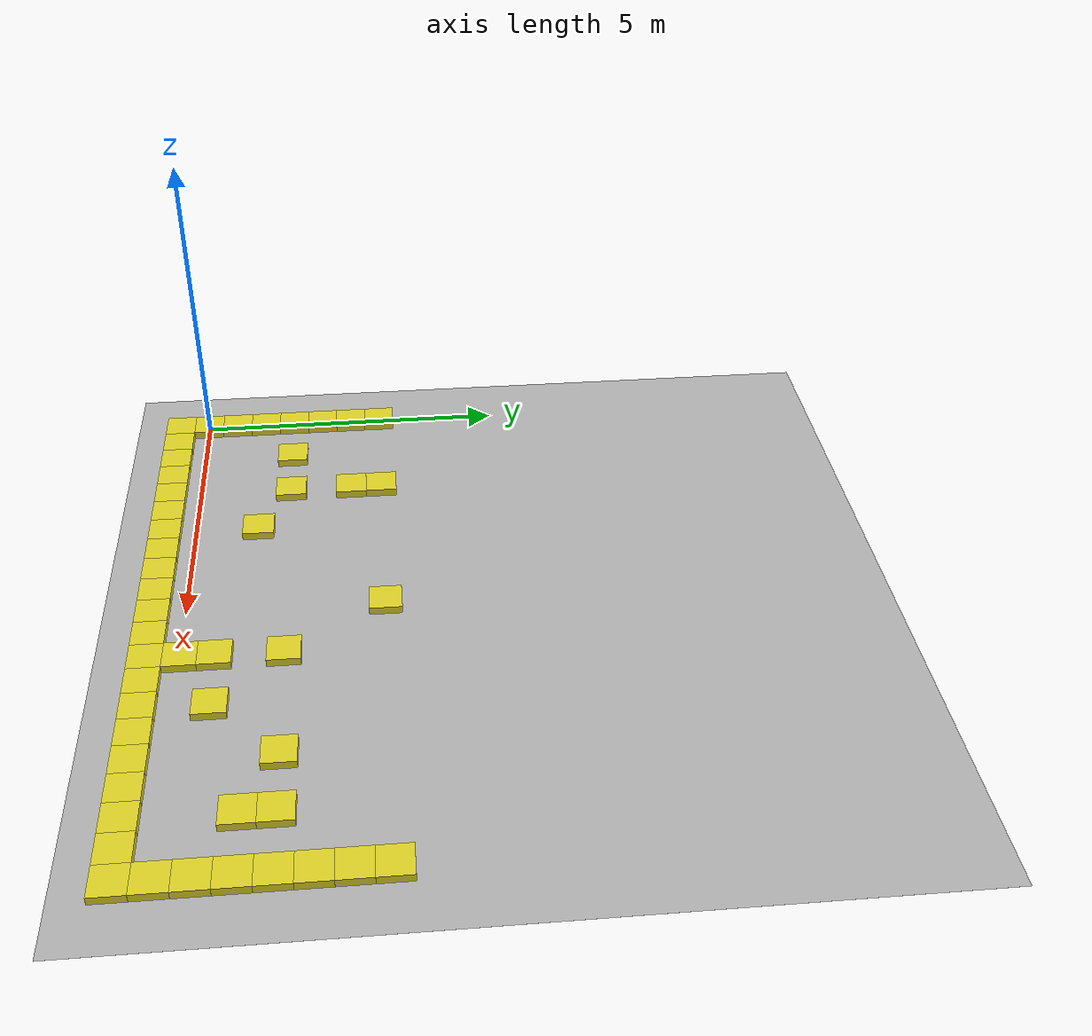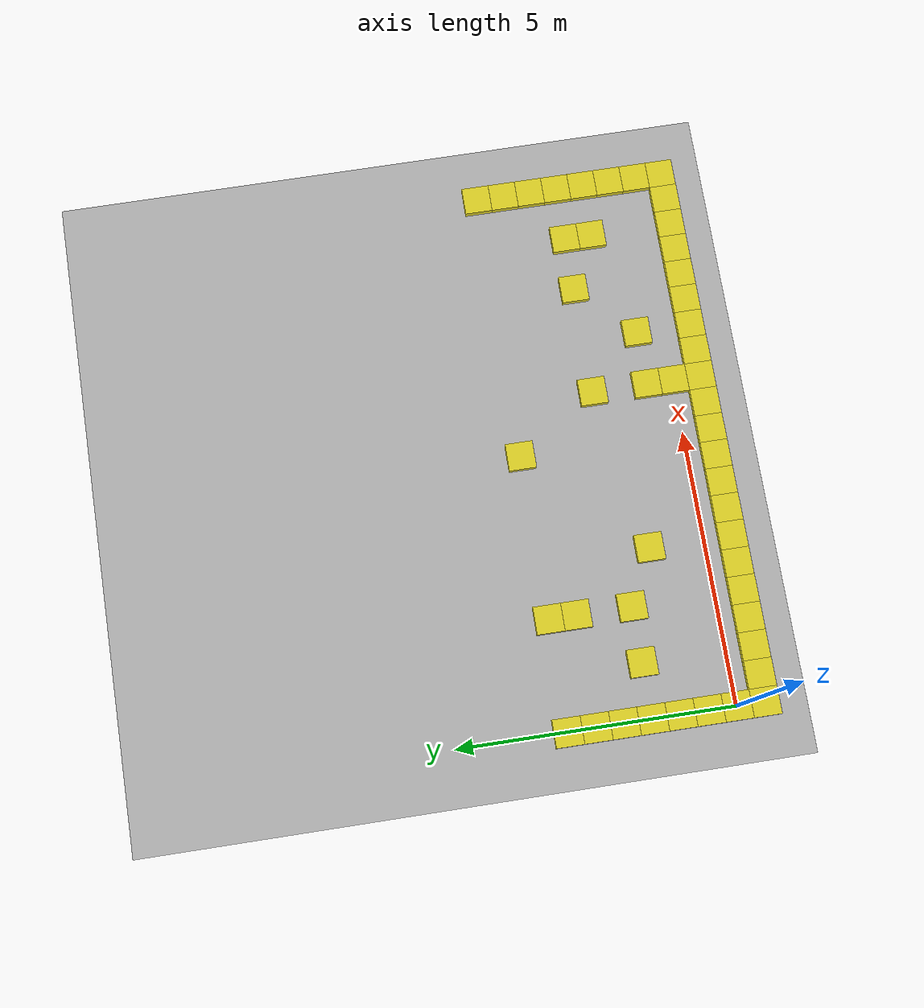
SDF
<sdf version="1.5">
 <world name="default">
  <include><uri>model://sun</uri></include>
  <include><uri>model://boundary</uri></include>
  <model name="unit_box_2">
   <pose>0.000000 -0.500000 0 0 -0 0</pose>
   <link name="link">
    <inertial>
     <mass>1</mass>
     <inertia><ixx>1</ixx><ixy>0</ixy><ixz>0</ixz><iyy>1</iyy><iyz>0</iyz><izz>1</izz></inertia>
    </inertial>
    <collision name="collision">
     <geometry><box><size>0.500000 0.500000 0.250000</size></box></geometry>
    </collision>
    <visual name="visual">
     <geometry><box><size>0.500000 0.500000 0.250000</size></box></geometry>
     <material>
      <script><uri>file://media/materials/scripts/gazebo.material</uri><name>Gazebo/Yellow</name></script>
     </material>
    </visual>
    <velocity_decay><linear>0</linear><angular>0</angular></velocity_decay>
   </link>
   <static>1</static>
  </model>
  <model name="unit_box_3">
   <pose>0.500000 -0.500000 0 0 -0 0</pose>
   <link name="link">
    <inertial>
     <mass>1</mass>
     <inertia><ixx>1</ixx><ixy>0</ixy><ixz>0</ixz><iyy>1</iyy><iyz>0</iyz><izz>1</izz></inertia>
    </inertial>
    <collision name="collision">
     <geometry><box><size>0.500000 0.500000 0.250000</size></box></geometry>
    </collision>
    <visual name="visual">
     <geometry><box><size>0.500000 0.500000 0.250000</size></box></geometry>
     <material>
      <script><uri>file://media/materials/scripts/gazebo.material</uri><name>Gazebo/Yellow</name></script>
     </material>
    </visual>
    <velocity_decay><linear>0</linear><angular>0</angular></velocity_decay>
   </link>
   <static>1</static>
  </model>
  <model name="unit_box_4">
   <pose>1.000000 -0.500000 0 0 -0 0</pose>
   <link name="link">
    <inertial>
     <mass>1</mass>
     <inertia><ixx>1</ixx><ixy>0</ixy><ixz>0</ixz><iyy>1</iyy><iyz>0</iyz><izz>1</izz></inertia>
    </inertial>
    <collision name="collision">
     <geometry><box><size>0.500000 0.500000 0.250000</size></box></geometry>
    </collision>
    <visual name="visual">
     <geometry><box><size>0.500000 0.500000 0.250000</size></box></geometry>
     <material>
      <script><uri>file://media/materials/scripts/gazebo.material</uri><name>Gazebo/Yellow</name></script>
     </material>
    </visual>
    <velocity_decay><linear>0</linear><angular>0</angular></velocity_decay>
   </link>
   <static>1</static>
  </model>
  <model name="unit_box_5">
   <pose>1.500000 -0.500000 0 0 -0 0</pose>
   <link name="link">
    <inertial>
     <mass>1</mass>
     <inertia><ixx>1</ixx><ixy>0</ixy><ixz>0</ixz><iyy>1</iyy><iyz>0</iyz><izz>1</izz></inertia>
    </inertial>
    <collision name="collision">
     <geometry><box><size>0.500000 0.500000 0.250000</size></box></geometry>
    </collision>
    <visual name="visual">
     <geometry><box><size>0.500000 0.500000 0.250000</size></box></geometry>
     <material>
      <script><uri>file://media/materials/scripts/gazebo.material</uri><name>Gazebo/Yellow</name></script>
     </material>
    </visual>
    <velocity_decay><linear>0</linear><angular>0</angular></velocity_decay>
   </link>
   <static>1</static>
  </model>
  <model name="unit_box_6">
   <pose>2.000000 -0.500000 0 0 -0 0</pose>
   <link name="link">
    <inertial>
     <mass>1</mass>
     <inertia><ixx>1</ixx><ixy>0</ixy><ixz>0</ixz><iyy>1</iyy><iyz>0</iyz><izz>1</izz></inertia>
    </inertial>
    <collision name="collision">
     <geometry><box><size>0.500000 0.500000 0.250000</size></box></geometry>
    </collision>
    <visual name="visual">
     <geometry><box><size>0.500000 0.500000 0.250000</size></box></geometry>
     <material>
      <script><uri>file://media/materials/scripts/gazebo.material</uri><name>Gazebo/Yellow</name></script>
     </material>
    </visual>
    <velocity_decay><linear>0</linear><angular>0</angular></velocity_decay>
   </link>
   <static>1</static>
  </model>
  <model name="unit_box_7">
   <pose>2.500000 -0.500000 0 0 -0 0</pose>
   <link name="link">
    <inertial>
     <mass>1</mass>
     <inertia><ixx>1</ixx><ixy>0</ixy><ixz>0</ixz><iyy>1</iyy><iyz>0</iyz><izz>1</izz></inertia>
    </inertial>
    <collision name="collision">
     <geometry><box><size>0.500000 0.500000 0.250000</size></box></geometry>
    </collision>
    <visual name="visual">
     <geometry><box><size>0.500000 0.500000 0.250000</size></box></geometry>
     <material>
      <script><uri>file://media/materials/scripts/gazebo.material</uri><name>Gazebo/Yellow</name></script>
     </material>
    </visual>
    <velocity_decay><linear>0</linear><angular>0</angular></velocity_decay>
   </link>
   <static>1</static>
  </model>
  <model name="unit_box_8">
   <pose>3.000000 -0.500000 0 0 -0 0</pose>
   <link name="link">
    <inertial>
     <mass>1</mass>
     <inertia><ixx>1</ixx><ixy>0</ixy><ixz>0</ixz><iyy>1</iyy><iyz>0</iyz><izz>1</izz></inertia>
    </inertial>
    <collision name="collision">
     <geometry><box><size>0.500000 0.500000 0.250000</size></box></geometry>
    </collision>
    <visual name="visual">
     <geometry><box><size>0.500000 0.500000 0.250000</size></box></geometry>
     <material>
      <script><uri>file://media/materials/scripts/gazebo.material</uri><name>Gazebo/Yellow</name></script>
     </material>
    </visual>
    <velocity_decay><linear>0</linear><angular>0</angular></velocity_decay>
   </link>
   <static>1</static>
  </model>
  <model name="unit_box_9">
   <pose>3.500000 -0.500000 0 0 -0 0</pose>
   <link name="link">
    <inertial>
     <mass>1</mass>
     <inertia><ixx>1</ixx><ixy>0</ixy><ixz>0</ixz><iyy>1</iyy><iyz>0</iyz><izz>1</izz></inertia>
    </inertial>
    <collision name="collision">
     <geometry><box><size>0.500000 0.500000 0.250000</size></box></geometry>
    </collision>
    <visual name="visual">
     <geometry><box><size>0.500000 0.500000 0.250000</size></box></geometry>
     <material>
      <script><uri>file://media/materials/scripts/gazebo.material</uri><name>Gazebo/Yellow</name></script>
     </material>
    </visual>
    <velocity_decay><linear>0</linear><angular>0</angular></velocity_decay>
   </link>
   <static>1</static>
  </model>
  <model name="unit_box_10">
   <pose>4.000000 -0.500000 0 0 -0 0</pose>
   <link name="link">
    <inertial>
     <mass>1</mass>
     <inertia><ixx>1</ixx><ixy>0</ixy><ixz>0</ixz><iyy>1</iyy><iyz>0</iyz><izz>1</izz></inertia>
    </inertial>
    <collision name="collision">
     <geometry><box><size>0.500000 0.500000 0.250000</size></box></geometry>
    </collision>
    <visual name="visual">
     <geometry><box><size>0.500000 0.500000 0.250000</size></box></geometry>
     <material>
      <script><uri>file://media/materials/scripts/gazebo.material</uri><name>Gazebo/Yellow</name></script>
     </material>
    </visual>
    <velocity_decay><linear>0</linear><angular>0</angular></velocity_decay>
   </link>
   <static>1</static>
  </model>
  <model name="unit_box_11">
   <pose>4.500000 -0.500000 0 0 -0 0</pose>
   <link name="link">
    <inertial>
     <mass>1</mass>
     <inertia><ixx>1</ixx><ixy>0</ixy><ixz>0</ixz><iyy>1</iyy><iyz>0</iyz><izz>1</izz></inertia>
    </inertial>
    <collision name="collision">
     <geometry><box><size>0.500000 0.500000 0.250000</size></box></geometry>
    </collision>
    <visual name="visual">
     <geometry><box><size>0.500000 0.500000 0.250000</size></box></geometry>
     <material>
      <script><uri>file://media/materials/scripts/gazebo.material</uri><name>Gazebo/Yellow</name></script>
     </material>
    </visual>
    <velocity_decay><linear>0</linear><angular>0</angular></velocity_decay>
   </link>
   <static>1</static>
  </model>
  <model name="unit_box_12">
   <pose>5.000000 -0.500000 0 0 -0 0</pose>
   <link name="link">
    <inertial>
     <mass>1</mass>
     <inertia><ixx>1</ixx><ixy>0</ixy><ixz>0</ixz><iyy>1</iyy><iyz>0</iyz><izz>1</izz></inertia>
    </inertial>
    <collision name="collision">
     <geometry><box><size>0.500000 0.500000 0.250000</size></box></geometry>
    </collision>
    <visual name="visual">
     <geometry><box><size>0.500000 0.500000 0.250000</size></box></geometry>
     <material>
      <script><uri>file://media/materials/scripts/gazebo.material</uri><name>Gazebo/Yellow</name></script>
     </material>
    </visual>
    <velocity_decay><linear>0</linear><angular>0</angular></velocity_decay>
   </link>
   <static>1</static>
  </model>
  <model name="unit_box_13">
   <pose>5.500000 -0.500000 0 0 -0 0</pose>
   <link name="link">
    <inertial>
     <mass>1</mass>
     <inertia><ixx>1</ixx><ixy>0</ixy><ixz>0</ixz><iyy>1</iyy><iyz>0</iyz><izz>1</izz></inertia>
    </inertial>
    <collision name="collision">
     <geometry><box><size>0.500000 0.500000 0.250000</size></box></geometry>
    </collision>
    <visual name="visual">
     <geometry><box><size>0.500000 0.500000 0.250000</size></box></geometry>
     <material>
      <script><uri>file://media/materials/scripts/gazebo.material</uri><name>Gazebo/Yellow</name></script>
     </material>
    </visual>
    <velocity_decay><linear>0</linear><angular>0</angular></velocity_decay>
   </link>
   <static>1</static>
  </model>
  <model name="unit_box_14">
   <pose>6.000000 -0.500000 0 0 -0 0</pose>
   <link name="link">
    <inertial>
     <mass>1</mass>
     <inertia><ixx>1</ixx><ixy>0</ixy><ixz>0</ixz><iyy>1</iyy><iyz>0</iyz><izz>1</izz></inertia>
    </inertial>
    <collision name="collision">
     <geometry><box><size>0.500000 0.500000 0.250000</size></box></geometry>
    </collision>
    <visual name="visual">
     <geometry><box><size>0.500000 0.500000 0.250000</size></box></geometry>
     <material>
      <script><uri>file://media/materials/scripts/gazebo.material</uri><name>Gazebo/Yellow</name></script>
     </material>
    </visual>
    <velocity_decay><linear>0</linear><angular>0</angular></velocity_decay>
   </link>
   <static>1</static>
  </model>
  <model name="unit_box_15">
   <pose>6.500000 -0.500000 0 0 -0 0</pose>
   <link name="link">
    <inertial>
     <mass>1</mass>
     <inertia><ixx>1</ixx><ixy>0</ixy><ixz>0</ixz><iyy>1</iyy><iyz>0</iyz><izz>1</izz></inertia>
    </inertial>
    <collision name="collision">
     <geometry><box><size>0.500000 0.500000 0.250000</size></box></geometry>
    </collision>
    <visual name="visual">
     <geometry><box><size>0.500000 0.500000 0.250000</size></box></geometry>
     <material>
      <script><uri>file://media/materials/scripts/gazebo.material</uri><name>Gazebo/Yellow</name></script>
     </material>
    </visual>
    <velocity_decay><linear>0</linear><angular>0</angular></velocity_decay>
   </link>
   <static>1</static>
  </model>
  <model name="unit_box_16">
   <pose>7.000000 -0.500000 0 0 -0 0</pose>
   <link name="link">
    <inertial>
     <mass>1</mass>
     <inertia><ixx>1</ixx><ixy>0</ixy><ixz>0</ixz><iyy>1</iyy><iyz>0</iyz><izz>1</izz></inertia>
    </inertial>
    <collision name="collision">
     <geometry><box><size>0.500000 0.500000 0.250000</size></box></geometry>
    </collision>
    <visual name="visual">
     <geometry><box><size>0.500000 0.500000 0.250000</size></box></geometry>
     <material>
      <script><uri>file://media/materials/scripts/gazebo.material</uri><name>Gazebo/Yellow</name></script>
     </material>
    </visual>
    <velocity_decay><linear>0</linear><angular>0</angular></velocity_decay>
   </link>
   <static>1</static>
  </model>
  <model name="unit_box_17">
   <pose>7.500000 -0.500000 0 0 -0 0</pose>
   <link name="link">
    <inertial>
     <mass>1</mass>
     <inertia><ixx>1</ixx><ixy>0</ixy><ixz>0</ixz><iyy>1</iyy><iyz>0</iyz><izz>1</izz></inertia>
    </inertial>
    <collision name="collision">
     <geometry><box><size>0.500000 0.500000 0.250000</size></box></geometry>
    </collision>
    <visual name="visual">
     <geometry><box><size>0.500000 0.500000 0.250000</size></box></geometry>
     <material>
      <script><uri>file://media/materials/scripts/gazebo.material</uri><name>Gazebo/Yellow</name></script>
     </material>
    </visual>
    <velocity_decay><linear>0</linear><angular>0</angular></velocity_decay>
   </link>
   <static>1</static>
  </model>
  <model name="unit_box_18">
   <pose>8.000000 -0.500000 0 0 -0 0</pose>
   <link name="link">
    <inertial>
     <mass>1</mass>
     <inertia><ixx>1</ixx><ixy>0</ixy><ixz>0</ixz><iyy>1</iyy><iyz>0</iyz><izz>1</izz></inertia>
    </inertial>
    <collision name="collision">
     <geometry><box><size>0.500000 0.500000 0.250000</size></box></geometry>
    </collision>
    <visual name="visual">
     <geometry><box><size>0.500000 0.500000 0.250000</size></box></geometry>
     <material>
      <script><uri>file://media/materials/scripts/gazebo.material</uri><name>Gazebo/Yellow</name></script>
     </material>
    </visual>
    <velocity_decay><linear>0</linear><angular>0</angular></velocity_decay>
   </link>
   <static>1</static>
  </model>
  <model name="unit_box_19">
   <pose>8.500000 -0.500000 0 0 -0 0</pose>
   <link name="link">
    <inertial>
     <mass>1</mass>
     <inertia><ixx>1</ixx><ixy>0</ixy><ixz>0</ixz><iyy>1</iyy><iyz>0</iyz><izz>1</izz></inertia>
    </inertial>
    <collision name="collision">
     <geometry><box><size>0.500000 0.500000 0.250000</size></box></geometry>
    </collision>
    <visual name="visual">
     <geometry><box><size>0.500000 0.500000 0.250000</size></box></geometry>
     <material>
      <script><uri>file://media/materials/scripts/gazebo.material</uri><name>Gazebo/Yellow</name></script>
     </material>
    </visual>
    <velocity_decay><linear>0</linear><angular>0</angular></velocity_decay>
   </link>
   <static>1</static>
  </model>
  <model name="unit_box_20">
   <pose>9.000000 -0.500000 0 0 -0 0</pose>
   <link name="link">
    <inertial>
     <mass>1</mass>
     <inertia><ixx>1</ixx><ixy>0</ixy><ixz>0</ixz><iyy>1</iyy><iyz>0</iyz><izz>1</izz></inertia>
    </inertial>
    <collision name="collision">
     <geometry><box><size>0.500000 0.500000 0.250000</size></box></geometry>
    </collision>
    <visual name="visual">
     <geometry><box><size>0.500000 0.500000 0.250000</size></box></geometry>
     <material>
      <script><uri>file://media/materials/scripts/gazebo.material</uri><name>Gazebo/Yellow</name></script>
     </material>
    </visual>
    <velocity_decay><linear>0</linear><angular>0</angular></velocity_decay>
   </link>
   <static>1</static>
  </model>
  <model name="unit_box_21">
   <pose>9.500000 -0.500000 0 0 -0 0</pose>
   <link name="link">
    <inertial>
     <mass>1</mass>
     <inertia><ixx>1</ixx><ixy>0</ixy><ixz>0</ixz><iyy>1</iyy><iyz>0</iyz><izz>1</izz></inertia>
    </inertial>
    <collision name="collision">
     <geometry><box><size>0.500000 0.500000 0.250000</size></box></geometry>
    </collision>
    <visual name="visual">
     <geometry><box><size>0.500000 0.500000 0.250000</size></box></geometry>
     <material>
      <script><uri>file://media/materials/scripts/gazebo.material</uri><name>Gazebo/Yellow</name></script>
     </material>
    </visual>
    <velocity_decay><linear>0</linear><angular>0</angular></velocity_decay>
   </link>
   <static>1</static>
  </model>
  <model name="unit_box_22">
   <pose>10.000000 -0.500000 0 0 -0 0</pose>
   <link name="link">
    <inertial>
     <mass>1</mass>
     <inertia><ixx>1</ixx><ixy>0</ixy><ixz>0</ixz><iyy>1</iyy><iyz>0</iyz><izz>1</izz></inertia>
    </inertial>
    <collision name="collision">
     <geometry><box><size>0.500000 0.500000 0.250000</size></box></geometry>
    </collision>
    <visual name="visual">
     <geometry><box><size>0.500000 0.500000 0.250000</size></box></geometry>
     <material>
      <script><uri>file://media/materials/scripts/gazebo.material</uri><name>Gazebo/Yellow</name></script>
     </material>
    </visual>
    <velocity_decay><linear>0</linear><angular>0</angular></velocity_decay>
   </link>
   <static>1</static>
  </model>
  <model name="unit_box_23">
   <link name="link">
    <inertial>
     <mass>1</mass>
     <inertia><ixx>1</ixx><ixy>0</ixy><ixz>0</ixz><iyy>1</iyy><iyz>0</iyz><izz>1</izz></inertia>
    </inertial>
    <collision name="collision">
     <geometry><box><size>0.500000 0.500000 0.250000</size></box></geometry>
    </collision>
    <visual name="visual">
     <geometry><box><size>0.500000 0.500000 0.250000</size></box></geometry>
     <material>
      <script><uri>file://media/materials/scripts/gazebo.material</uri><name>Gazebo/Yellow</name></script>
     </material>
    </visual>
    <velocity_decay><linear>0</linear><angular>0</angular></velocity_decay>
   </link>
   <static>1</static>
  </model>
  <model name="unit_box_24">
   <pose>0.000000 0.500000 0 0 -0 0</pose>
   <link name="link">
    <inertial>
     <mass>1</mass>
     <inertia><ixx>1</ixx><ixy>0</ixy><ixz>0</ixz><iyy>1</iyy><iyz>0</iyz><izz>1</izz></inertia>
    </inertial>
    <collision name="collision">
     <geometry><box><size>0.500000 0.500000 0.250000</size></box></geometry>
    </collision>
    <visual name="visual">
     <geometry><box><size>0.500000 0.500000 0.250000</size></box></geometry>
     <material>
      <script><uri>file://media/materials/scripts/gazebo.material</uri><name>Gazebo/Yellow</name></script>
     </material>
    </visual>
    <velocity_decay><linear>0</linear><angular>0</angular></velocity_decay>
   </link>
   <static>1</static>
  </model>
  <model name="unit_box_25">
   <pose>0.000000 1.000000 0 0 -0 0</pose>
   <link name="link">
    <inertial>
     <mass>1</mass>
     <inertia><ixx>1</ixx><ixy>0</ixy><ixz>0</ixz><iyy>1</iyy><iyz>0</iyz><izz>1</izz></inertia>
    </inertial>
    <collision name="collision">
     <geometry><box><size>0.500000 0.500000 0.250000</size></box></geometry>
    </collision>
    <visual name="visual">
     <geometry><box><size>0.500000 0.500000 0.250000</size></box></geometry>
     <material>
      <script><uri>file://media/materials/scripts/gazebo.material</uri><name>Gazebo/Yellow</name></script>
     </material>
    </visual>
    <velocity_decay><linear>0</linear><angular>0</angular></velocity_decay>
   </link>
   <static>1</static>
  </model>
  <model name="unit_box_26">
   <pose>0.000000 1.500000 0 0 -0 0</pose>
   <link name="link">
    <inertial>
     <mass>1</mass>
     <inertia><ixx>1</ixx><ixy>0</ixy><ixz>0</ixz><iyy>1</iyy><iyz>0</iyz><izz>1</izz></inertia>
    </inertial>
    <collision name="collision">
     <geometry><box><size>0.500000 0.500000 0.250000</size></box></geometry>
    </collision>
    <visual name="visual">
     <geometry><box><size>0.500000 0.500000 0.250000</size></box></geometry>
     <material>
      <script><uri>file://media/materials/scripts/gazebo.material</uri><name>Gazebo/Yellow</name></script>
     </material>
    </visual>
    <velocity_decay><linear>0</linear><angular>0</angular></velocity_decay>
   </link>
   <static>1</static>
  </model>
  <model name="unit_box_27">
   <pose>0.000000 2.000000 0 0 -0 0</pose>
   <link name="link">
    <inertial>
     <mass>1</mass>
     <inertia><ixx>1</ixx><ixy>0</ixy><ixz>0</ixz><iyy>1</iyy><iyz>0</iyz><izz>1</izz></inertia>
    </inertial>
    <collision name="collision">
     <geometry><box><size>0.500000 0.500000 0.250000</size></box></geometry>
    </collision>
    <visual name="visual">
     <geometry><box><size>0.500000 0.500000 0.250000</size></box></geometry>
     <material>
      <script><uri>file://media/materials/scripts/gazebo.material</uri><name>Gazebo/Yellow</name></script>
     </material>
    </visual>
    <velocity_decay><linear>0</linear><angular>0</angular></velocity_decay>
   </link>
   <static>1</static>
  </model>
  <model name="unit_box_28">
   <pose>0.000000 2.500000 0 0 -0 0</pose>
   <link name="link">
    <inertial>
     <mass>1</mass>
     <inertia><ixx>1</ixx><ixy>0</ixy><ixz>0</ixz><iyy>1</iyy><iyz>0</iyz><izz>1</izz></inertia>
    </inertial>
    <collision name="collision">
     <geometry><box><size>0.500000 0.500000 0.250000</size></box></geometry>
    </collision>
    <visual name="visual">
     <geometry><box><size>0.500000 0.500000 0.250000</size></box></geometry>
     <material>
      <script><uri>file://media/materials/scripts/gazebo.material</uri><name>Gazebo/Yellow</name></script>
     </material>
    </visual>
    <velocity_decay><linear>0</linear><angular>0</angular></velocity_decay>
   </link>
   <static>1</static>
  </model>
  <model name="unit_box_29">
   <pose>0.000000 3.000000 0 0 -0 0</pose>
   <link name="link">
    <inertial>
     <mass>1</mass>
     <inertia><ixx>1</ixx><ixy>0</ixy><ixz>0</ixz><iyy>1</iyy><iyz>0</iyz><izz>1</izz></inertia>
    </inertial>
    <collision name="collision">
     <geometry><box><size>0.500000 0.500000 0.250000</size></box></geometry>
    </collision>
    <visual name="visual">
     <geometry><box><size>0.500000 0.500000 0.250000</size></box></geometry>
     <material>
      <script><uri>file://media/materials/scripts/gazebo.material</uri><name>Gazebo/Yellow</name></script>
     </material>
    </visual>
    <velocity_decay><linear>0</linear><angular>0</angular></velocity_decay>
   </link>
   <static>1</static>
  </model>
  <model name="unit_box_64">
   <pose>10.000000 0.000000 0 0 -0 0</pose>
   <link name="link">
    <inertial>
     <mass>1</mass>
     <inertia><ixx>1</ixx><ixy>0</ixy><ixz>0</ixz><iyy>1</iyy><iyz>0</iyz><izz>1</izz></inertia>
    </inertial>
    <collision name="collision">
     <geometry><box><size>0.500000 0.500000 0.250000</size></box></geometry>
    </collision>
    <visual name="visual">
     <geometry><box><size>0.500000 0.500000 0.250000</size></box></geometry>
     <material>
      <script><uri>file://media/materials/scripts/gazebo.material</uri><name>Gazebo/Yellow</name></script>
     </material>
    </visual>
    <velocity_decay><linear>0</linear><angular>0</angular></velocity_decay>
   </link>
   <static>1</static>
  </model>
  <model name="unit_box_65">
   <pose>10.000000 0.500000 0 0 -0 0</pose>
   <link name="link">
    <inertial>
     <mass>1</mass>
     <inertia><ixx>1</ixx><ixy>0</ixy><ixz>0</ixz><iyy>1</iyy><iyz>0</iyz><izz>1</izz></inertia>
    </inertial>
    <collision name="collision">
     <geometry><box><size>0.500000 0.500000 0.250000</size></box></geometry>
    </collision>
    <visual name="visual">
     <geometry><box><size>0.500000 0.500000 0.250000</size></box></geometry>
     <material>
      <script><uri>file://media/materials/scripts/gazebo.material</uri><name>Gazebo/Yellow</name></script>
     </material>
    </visual>
    <velocity_decay><linear>0</linear><angular>0</angular></velocity_decay>
   </link>
   <static>1</static>
  </model>
  <model name="unit_box_66">
   <pose>10.000000 1.000000 0 0 -0 0</pose>
   <link name="link">
    <inertial>
     <mass>1</mass>
     <inertia><ixx>1</ixx><ixy>0</ixy><ixz>0</ixz><iyy>1</iyy><iyz>0</iyz><izz>1</izz></inertia>
    </inertial>
    <collision name="collision">
     <geometry><box><size>0.500000 0.500000 0.250000</size></box></geometry>
    </collision>
    <visual name="visual">
     <geometry><box><size>0.500000 0.500000 0.250000</size></box></geometry>
     <material>
      <script><uri>file://media/materials/scripts/gazebo.material</uri><name>Gazebo/Yellow</name></script>
     </material>
    </visual>
    <velocity_decay><linear>0</linear><angular>0</angular></velocity_decay>
   </link>
   <static>1</static>
  </model>
  <model name="unit_box_67">
   <pose>10.000000 1.500000 0 0 -0 0</pose>
   <link name="link">
    <inertial>
     <mass>1</mass>
     <inertia><ixx>1</ixx><ixy>0</ixy><ixz>0</ixz><iyy>1</iyy><iyz>0</iyz><izz>1</izz></inertia>
    </inertial>
    <collision name="collision">
     <geometry><box><size>0.500000 0.500000 0.250000</size></box></geometry>
    </collision>
    <visual name="visual">
     <geometry><box><size>0.500000 0.500000 0.250000</size></box></geometry>
     <material>
      <script><uri>file://media/materials/scripts/gazebo.material</uri><name>Gazebo/Yellow</name></script>
     </material>
    </visual>
    <velocity_decay><linear>0</linear><angular>0</angular></velocity_decay>
   </link>
   <static>1</static>
  </model>
  <model name="unit_box_68">
   <pose>10.000000 2.000000 0 0 -0 0</pose>
   <link name="link">
    <inertial>
     <mass>1</mass>
     <inertia><ixx>1</ixx><ixy>0</ixy><ixz>0</ixz><iyy>1</iyy><iyz>0</iyz><izz>1</izz></inertia>
    </inertial>
    <collision name="collision">
     <geometry><box><size>0.500000 0.500000 0.250000</size></box></geometry>
    </collision>
    <visual name="visual">
     <geometry><box><size>0.500000 0.500000 0.250000</size></box></geometry>
     <material>
      <script><uri>file://media/materials/scripts/gazebo.material</uri><name>Gazebo/Yellow</name></script>
     </material>
    </visual>
    <velocity_decay><linear>0</linear><angular>0</angular></velocity_decay>
   </link>
   <static>1</static>
  </model>
  <model name="unit_box_69">
   <pose>10.000000 2.500000 0 0 -0 0</pose>
   <link name="link">
    <inertial>
     <mass>1</mass>
     <inertia><ixx>1</ixx><ixy>0</ixy><ixz>0</ixz><iyy>1</iyy><iyz>0</iyz><izz>1</izz></inertia>
    </inertial>
    <collision name="collision">
     <geometry><box><size>0.500000 0.500000 0.250000</size></box></geometry>
    </collision>
    <visual name="visual">
     <geometry><box><size>0.500000 0.500000 0.250000</size></box></geometry>
     <material>
      <script><uri>file://media/materials/scripts/gazebo.material</uri><name>Gazebo/Yellow</name></script>
     </material>
    </visual>
    <velocity_decay><linear>0</linear><angular>0</angular></velocity_decay>
   </link>
   <static>1</static>
  </model>
  <model name="unit_box_70">
   <pose>10.000000 3.000000 0 0 -0 0</pose>
   <link name="link">
    <inertial>
     <mass>1</mass>
     <inertia><ixx>1</ixx><ixy>0</ixy><ixz>0</ixz><iyy>1</iyy><iyz>0</iyz><izz>1</izz></inertia>
    </inertial>
    <collision name="collision">
     <geometry><box><size>0.500000 0.500000 0.250000</size></box></geometry>
    </collision>
    <visual name="visual">
     <geometry><box><size>0.500000 0.500000 0.250000</size></box></geometry>
     <material>
      <script><uri>file://media/materials/scripts/gazebo.material</uri><name>Gazebo/Yellow</name></script>
     </material>
    </visual>
    <velocity_decay><linear>0</linear><angular>0</angular></velocity_decay>
   </link>
   <static>1</static>
  </model>
  <model name="unit_box_103">
   <pose>5.000000 3.000000 0 0 -0 0</pose>
   <link name="link">
    <inertial>
     <mass>1</mass>
     <inertia><ixx>1</ixx><ixy>0</ixy><ixz>0</ixz><iyy>1</iyy><iyz>0</iyz><izz>1</izz></inertia>
    </inertial>
    <collision name="collision">
     <geometry><box><size>0.500000 0.500000 0.250000</size></box></geometry>
    </collision>
    <visual name="visual">
     <geometry><box><size>0.500000 0.500000 0.250000</size></box></geometry>
     <material>
      <script><uri>file://media/materials/scripts/gazebo.material</uri><name>Gazebo/Yellow</name></script>
     </material>
    </visual>
    <velocity_decay><linear>0</linear><angular>0</angular></velocity_decay>
   </link>
   <static>1</static>
  </model>
  <model name="unit_box_119">
   <pose>0.000000 3.000000 0 0 -0 0</pose>
   <link name="link">
    <inertial>
     <mass>1</mass>
     <inertia><ixx>1</ixx><ixy>0</ixy><ixz>0</ixz><iyy>1</iyy><iyz>0</iyz><izz>1</izz></inertia>
    </inertial>
    <collision name="collision">
     <geometry><box><size>0.500000 0.500000 0.250000</size></box></geometry>
    </collision>
    <visual name="visual">
     <geometry><box><size>0.500000 0.500000 0.250000</size></box></geometry>
     <material>
      <script><uri>file://media/materials/scripts/gazebo.material</uri><name>Gazebo/Yellow</name></script>
     </material>
    </visual>
    <velocity_decay><linear>0</linear><angular>0</angular></velocity_decay>
   </link>
   <static>1</static>
  </model>
  <model name="unit_box_130">
   <pose>2.000000 3.000000 0 0 -0 0</pose>
   <link name="link">
    <inertial>
     <mass>1</mass>
     <inertia><ixx>1</ixx><ixy>0</ixy><ixz>0</ixz><iyy>1</iyy><iyz>0</iyz><izz>1</izz></inertia>
    </inertial>
    <collision name="collision">
     <geometry><box><size>0.500000 0.500000 0.250000</size></box></geometry>
    </collision>
    <visual name="visual">
     <geometry><box><size>0.500000 0.500000 0.250000</size></box></geometry>
     <material>
      <script><uri>file://media/materials/scripts/gazebo.material</uri><name>Gazebo/Yellow</name></script>
     </material>
    </visual>
    <velocity_decay><linear>0</linear><angular>0</angular></velocity_decay>
   </link>
   <static>1</static>
  </model>
  <model name="unit_box_152">
   <link name="link">
    <inertial>
     <mass>1</mass>
     <inertia><ixx>1</ixx><ixy>0</ixy><ixz>0</ixz><iyy>1</iyy><iyz>0</iyz><izz>1</izz></inertia>
    </inertial>
    <collision name="collision">
     <geometry><box><size>0.500000 0.500000 0.250000</size></box></geometry>
    </collision>
    <visual name="visual">
     <geometry><box><size>0.500000 0.500000 0.250000</size></box></geometry>
     <material>
      <script><uri>file://media/materials/scripts/gazebo.material</uri><name>Gazebo/Yellow</name></script>
     </material>
    </visual>
    <velocity_decay><linear>0</linear><angular>0</angular></velocity_decay>
   </link>
   <static>1</static>
  </model>
  <model name="unit_box_153">
   <pose>7.000000 0.500000 0 0 -0 0</pose>
   <link name="link">
    <inertial>
     <mass>1</mass>
     <inertia><ixx>1</ixx><ixy>0</ixy><ixz>0</ixz><iyy>1</iyy><iyz>0</iyz><izz>1</izz></inertia>
    </inertial>
    <collision name="collision">
     <geometry><box><size>0.500000 0.500000 0.250000</size></box></geometry>
    </collision>
    <visual name="visual">
     <geometry><box><size>0.500000 0.500000 0.250000</size></box></geometry>
     <material>
      <script><uri>file://media/materials/scripts/gazebo.material</uri><name>Gazebo/Yellow</name></script>
     </material>
    </visual>
    <velocity_decay><linear>0</linear><angular>0</angular></velocity_decay>
   </link>
   <static>1</static>
  </model>
  <model name="unit_box_154">
   <pose>9.000000 1.000000 0 0 -0 0</pose>
   <link name="link">
    <inertial>
     <mass>1</mass>
     <inertia><ixx>1</ixx><ixy>0</ixy><ixz>0</ixz><iyy>1</iyy><iyz>0</iyz><izz>1</izz></inertia>
    </inertial>
    <collision name="collision">
     <geometry><box><size>0.500000 0.500000 0.250000</size></box></geometry>
    </collision>
    <visual name="visual">
     <geometry><box><size>0.500000 0.500000 0.250000</size></box></geometry>
     <material>
      <script><uri>file://media/materials/scripts/gazebo.material</uri><name>Gazebo/Yellow</name></script>
     </material>
    </visual>
    <velocity_decay><linear>0</linear><angular>0</angular></velocity_decay>
   </link>
   <static>1</static>
  </model>
  <model name="unit_box_155">
   <pose>6.000000 1.500000 0 0 -0 0</pose>
   <link name="link">
    <inertial>
     <mass>1</mass>
     <inertia><ixx>1</ixx><ixy>0</ixy><ixz>0</ixz><iyy>1</iyy><iyz>0</iyz><izz>1</izz></inertia>
    </inertial>
    <collision name="collision">
     <geometry><box><size>0.500000 0.500000 0.250000</size></box></geometry>
    </collision>
    <visual name="visual">
     <geometry><box><size>0.500000 0.500000 0.250000</size></box></geometry>
     <material>
      <script><uri>file://media/materials/scripts/gazebo.material</uri><name>Gazebo/Yellow</name></script>
     </material>
    </visual>
    <velocity_decay><linear>0</linear><angular>0</angular></velocity_decay>
   </link>
   <static>1</static>
  </model>
  <model name="unit_box_156">
   <pose>0.000000 2.000000 0 0 -0 0</pose>
   <link name="link">
    <inertial>
     <mass>1</mass>
     <inertia><ixx>1</ixx><ixy>0</ixy><ixz>0</ixz><iyy>1</iyy><iyz>0</iyz><izz>1</izz></inertia>
    </inertial>
    <collision name="collision">
     <geometry><box><size>0.500000 0.500000 0.250000</size></box></geometry>
    </collision>
    <visual name="visual">
     <geometry><box><size>0.500000 0.500000 0.250000</size></box></geometry>
     <material>
      <script><uri>file://media/materials/scripts/gazebo.material</uri><name>Gazebo/Yellow</name></script>
     </material>
    </visual>
    <velocity_decay><linear>0</linear><angular>0</angular></velocity_decay>
   </link>
   <static>1</static>
  </model>
  <model name="unit_box_157">
   <pose>2.000000 2.500000 0 0 -0 0</pose>
   <link name="link">
    <inertial>
     <mass>1</mass>
     <inertia><ixx>1</ixx><ixy>0</ixy><ixz>0</ixz><iyy>1</iyy><iyz>0</iyz><izz>1</izz></inertia>
    </inertial>
    <collision name="collision">
     <geometry><box><size>0.500000 0.500000 0.250000</size></box></geometry>
    </collision>
    <visual name="visual">
     <geometry><box><size>0.500000 0.500000 0.250000</size></box></geometry>
     <material>
      <script><uri>file://media/materials/scripts/gazebo.material</uri><name>Gazebo/Yellow</name></script>
     </material>
    </visual>
    <velocity_decay><linear>0</linear><angular>0</angular></velocity_decay>
   </link>
   <static>1</static>
  </model>
  <model name="unit_box_159">
   <pose>0.000000 1.500000 0 0 -0 0</pose>
   <link name="link">
    <inertial>
     <mass>1</mass>
     <inertia><ixx>1</ixx><ixy>0</ixy><ixz>0</ixz><iyy>1</iyy><iyz>0</iyz><izz>1</izz></inertia>
    </inertial>
    <collision name="collision">
     <geometry><box><size>0.500000 0.500000 0.250000</size></box></geometry>
    </collision>
    <visual name="visual">
     <geometry><box><size>0.500000 0.500000 0.250000</size></box></geometry>
     <material>
      <script><uri>file://media/materials/scripts/gazebo.material</uri><name>Gazebo/Yellow</name></script>
     </material>
    </visual>
    <velocity_decay><linear>0</linear><angular>0</angular></velocity_decay>
   </link>
   <static>1</static>
  </model>
  <model name="unit_box_160">
   <pose>8.000000 1.500000 0 0 -0 0</pose>
   <link name="link">
    <inertial>
     <mass>1</mass>
     <inertia><ixx>1</ixx><ixy>0</ixy><ixz>0</ixz><iyy>1</iyy><iyz>0</iyz><izz>1</izz></inertia>
    </inertial>
    <collision name="collision">
     <geometry><box><size>0.500000 0.500000 0.250000</size></box></geometry>
    </collision>
    <visual name="visual">
     <geometry><box><size>0.500000 0.500000 0.250000</size></box></geometry>
     <material>
      <script><uri>file://media/materials/scripts/gazebo.material</uri><name>Gazebo/Yellow</name></script>
     </material>
    </visual>
    <velocity_decay><linear>0</linear><angular>0</angular></velocity_decay>
   </link>
   <static>1</static>
  </model>
  <model name="unit_box_161">
   <pose>9.000000 1.500000 0 0 -0 0</pose>
   <link name="link">
    <inertial>
     <mass>1</mass>
     <inertia><ixx>1</ixx><ixy>0</ixy><ixz>0</ixz><iyy>1</iyy><iyz>0</iyz><izz>1</izz></inertia>
    </inertial>
    <collision name="collision">
     <geometry><box><size>0.500000 0.500000 0.250000</size></box></geometry>
    </collision>
    <visual name="visual">
     <geometry><box><size>0.500000 0.500000 0.250000</size></box></geometry>
     <material>
      <script><uri>file://media/materials/scripts/gazebo.material</uri><name>Gazebo/Yellow</name></script>
     </material>
    </visual>
    <velocity_decay><linear>0</linear><angular>0</angular></velocity_decay>
   </link>
   <static>1</static>
  </model>
  <model name="unit_box_162">
   <pose>0.000000 1.500000 0 0 -0 0</pose>
   <link name="link">
    <inertial>
     <mass>1</mass>
     <inertia><ixx>1</ixx><ixy>0</ixy><ixz>0</ixz><iyy>1</iyy><iyz>0</iyz><izz>1</izz></inertia>
    </inertial>
    <collision name="collision">
     <geometry><box><size>0.500000 0.500000 0.250000</size></box></geometry>
    </collision>
    <visual name="visual">
     <geometry><box><size>0.500000 0.500000 0.250000</size></box></geometry>
     <material>
      <script><uri>file://media/materials/scripts/gazebo.material</uri><name>Gazebo/Yellow</name></script>
     </material>
    </visual>
    <velocity_decay><linear>0</linear><angular>0</angular></velocity_decay>
   </link>
   <static>1</static>
  </model>
  <model name="unit_box_163">
   <pose>1.000000 1.500000 0 0 -0 0</pose>
   <link name="link">
    <inertial>
     <mass>1</mass>
     <inertia><ixx>1</ixx><ixy>0</ixy><ixz>0</ixz><iyy>1</iyy><iyz>0</iyz><izz>1</izz></inertia>
    </inertial>
    <collision name="collision">
     <geometry><box><size>0.500000 0.500000 0.250000</size></box></geometry>
    </collision>
    <visual name="visual">
     <geometry><box><size>0.500000 0.500000 0.250000</size></box></geometry>
     <material>
      <script><uri>file://media/materials/scripts/gazebo.material</uri><name>Gazebo/Yellow</name></script>
     </material>
    </visual>
    <velocity_decay><linear>0</linear><angular>0</angular></velocity_decay>
   </link>
   <static>1</static>
  </model>
  <model name="unit_box_164">
   <pose>6.000000 1.500000 0 0 -0 0</pose>
   <link name="link">
    <inertial>
     <mass>1</mass>
     <inertia><ixx>1</ixx><ixy>0</ixy><ixz>0</ixz><iyy>1</iyy><iyz>0</iyz><izz>1</izz></inertia>
    </inertial>
    <collision name="collision">
     <geometry><box><size>0.500000 0.500000 0.250000</size></box></geometry>
    </collision>
    <visual name="visual">
     <geometry><box><size>0.500000 0.500000 0.250000</size></box></geometry>
     <material>
      <script><uri>file://media/materials/scripts/gazebo.material</uri><name>Gazebo/Yellow</name></script>
     </material>
    </visual>
    <velocity_decay><linear>0</linear><angular>0</angular></velocity_decay>
   </link>
   <static>1</static>
  </model>
  <model name="unit_box_165">
   <pose>2.000000 1.500000 0 0 -0 0</pose>
   <link name="link">
    <inertial>
     <mass>1</mass>
     <inertia><ixx>1</ixx><ixy>0</ixy><ixz>0</ixz><iyy>1</iyy><iyz>0</iyz><izz>1</izz></inertia>
    </inertial>
    <collision name="collision">
     <geometry><box><size>0.500000 0.500000 0.250000</size></box></geometry>
    </collision>
    <visual name="visual">
     <geometry><box><size>0.500000 0.500000 0.250000</size></box></geometry>
     <material>
      <script><uri>file://media/materials/scripts/gazebo.material</uri><name>Gazebo/Yellow</name></script>
     </material>
    </visual>
    <velocity_decay><linear>0</linear><angular>0</angular></velocity_decay>
   </link>
   <static>1</static>
  </model>
  <model name="unit_box_166">
   <pose>1.000000 1.500000 0 0 -0 0</pose>
   <link name="link">
    <inertial>
     <mass>1</mass>
     <inertia><ixx>1</ixx><ixy>0</ixy><ixz>0</ixz><iyy>1</iyy><iyz>0</iyz><izz>1</izz></inertia>
    </inertial>
    <collision name="collision">
     <geometry><box><size>0.500000 0.500000 0.250000</size></box></geometry>
    </collision>
    <visual name="visual">
     <geometry><box><size>0.500000 0.500000 0.250000</size></box></geometry>
     <material>
      <script><uri>file://media/materials/scripts/gazebo.material</uri><name>Gazebo/Yellow</name></script>
     </material>
    </visual>
    <velocity_decay><linear>0</linear><angular>0</angular></velocity_decay>
   </link>
   <static>1</static>
  </model>
  <model name="unit_box_167">
   <pose>6.000000 1.500000 0 0 -0 0</pose>
   <link name="link">
    <inertial>
     <mass>1</mass>
     <inertia><ixx>1</ixx><ixy>0</ixy><ixz>0</ixz><iyy>1</iyy><iyz>0</iyz><izz>1</izz></inertia>
    </inertial>
    <collision name="collision">
     <geometry><box><size>0.500000 0.500000 0.250000</size></box></geometry>
    </collision>
    <visual name="visual">
     <geometry><box><size>0.500000 0.500000 0.250000</size></box></geometry>
     <material>
      <script><uri>file://media/materials/scripts/gazebo.material</uri><name>Gazebo/Yellow</name></script>
     </material>
    </visual>
    <velocity_decay><linear>0</linear><angular>0</angular></velocity_decay>
   </link>
   <static>1</static>
  </model>
  <model name="unit_box_168">
   <pose>1.000000 1.500000 0 0 -0 0</pose>
   <link name="link">
    <inertial>
     <mass>1</mass>
     <inertia><ixx>1</ixx><ixy>0</ixy><ixz>0</ixz><iyy>1</iyy><iyz>0</iyz><izz>1</izz></inertia>
    </inertial>
    <collision name="collision">
     <geometry><box><size>0.500000 0.500000 0.250000</size></box></geometry>
    </collision>
    <visual name="visual">
     <geometry><box><size>0.500000 0.500000 0.250000</size></box></geometry>
     <material>
      <script><uri>file://media/materials/scripts/gazebo.material</uri><name>Gazebo/Yellow</name></script>
     </material>
    </visual>
    <velocity_decay><linear>0</linear><angular>0</angular></velocity_decay>
   </link>
   <static>1</static>
  </model>
  <model name="unit_box_169">
   <pose>3.000000 1.000000 0 0 -0 0</pose>
   <link name="link">
    <inertial>
     <mass>1</mass>
     <inertia><ixx>1</ixx><ixy>0</ixy><ixz>0</ixz><iyy>1</iyy><iyz>0</iyz><izz>1</izz></inertia>
    </inertial>
    <collision name="collision">
     <geometry><box><size>0.500000 0.500000 0.250000</size></box></geometry>
    </collision>
    <visual name="visual">
     <geometry><box><size>0.500000 0.500000 0.250000</size></box></geometry>
     <material>
      <script><uri>file://media/materials/scripts/gazebo.material</uri><name>Gazebo/Yellow</name></script>
     </material>
    </visual>
    <velocity_decay><linear>0</linear><angular>0</angular></velocity_decay>
   </link>
   <static>1</static>
  </model>
  <model name="unit_box_170">
   <pose>6.000000 0.500000 0 0 -0 0</pose>
   <link name="link">
    <inertial>
     <mass>1</mass>
     <inertia><ixx>1</ixx><ixy>0</ixy><ixz>0</ixz><iyy>1</iyy><iyz>0</iyz><izz>1</izz></inertia>
    </inertial>
    <collision name="collision">
     <geometry><box><size>0.500000 0.500000 0.250000</size></box></geometry>
    </collision>
    <visual name="visual">
     <geometry><box><size>0.500000 0.500000 0.250000</size></box></geometry>
     <material>
      <script><uri>file://media/materials/scripts/gazebo.material</uri><name>Gazebo/Yellow</name></script>
     </material>
    </visual>
    <velocity_decay><linear>0</linear><angular>0</angular></velocity_decay>
   </link>
   <static>1</static>
  </model>
  <model name="unit_box_171">
   <pose>6.000000 0.000000 0 0 -0 0</pose>
   <link name="link">
    <inertial>
     <mass>1</mass>
     <inertia><ixx>1</ixx><ixy>0</ixy><ixz>0</ixz><iyy>1</iyy><iyz>0</iyz><izz>1</izz></inertia>
    </inertial>
    <collision name="collision">
     <geometry><box><size>0.500000 0.500000 0.250000</size></box></geometry>
    </collision>
    <visual name="visual">
     <geometry><box><size>0.500000 0.500000 0.250000</size></box></geometry>
     <material>
      <script><uri>file://media/materials/scripts/gazebo.material</uri><name>Gazebo/Yellow</name></script>
     </material>
    </visual>
    <velocity_decay><linear>0</linear><angular>0</angular></velocity_decay>
   </link>
   <static>1</static>
  </model>
 </world>
</sdf>
